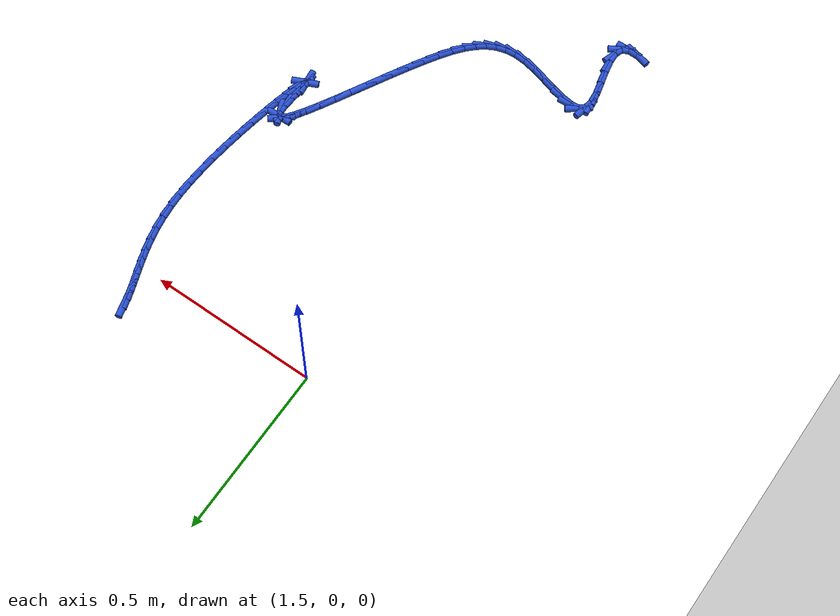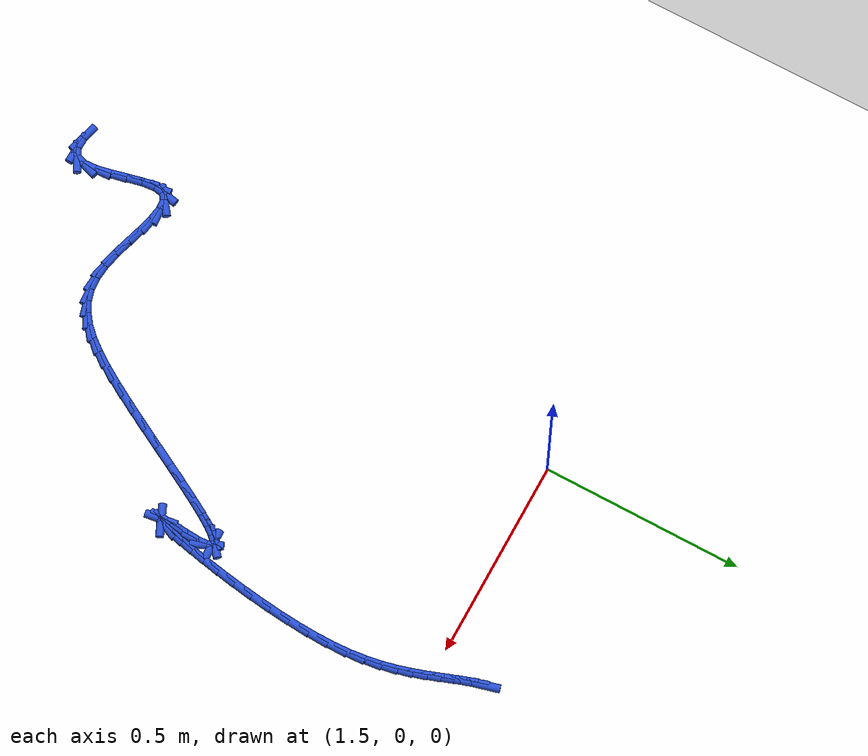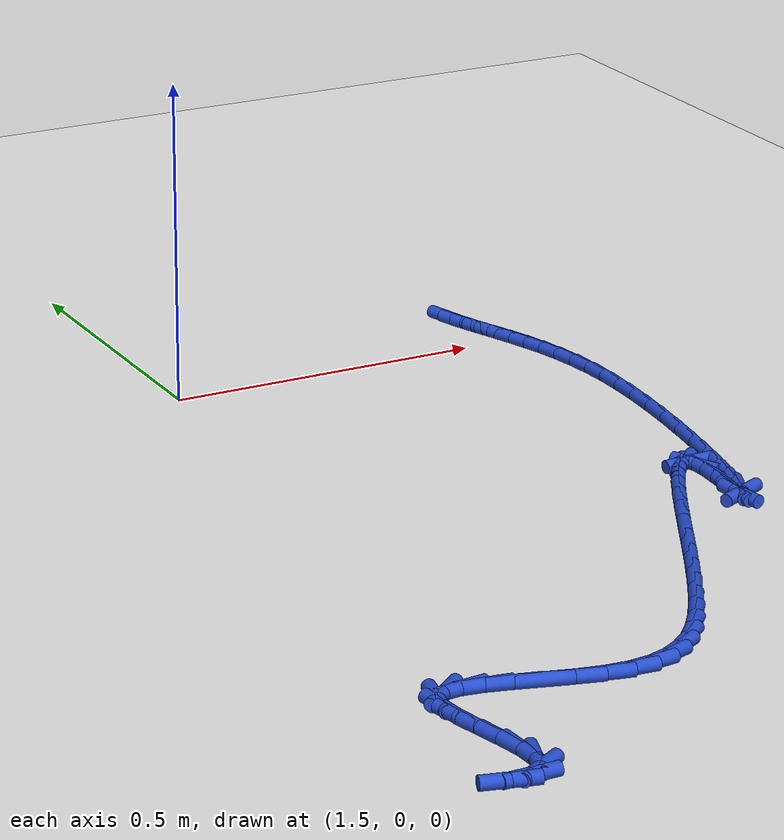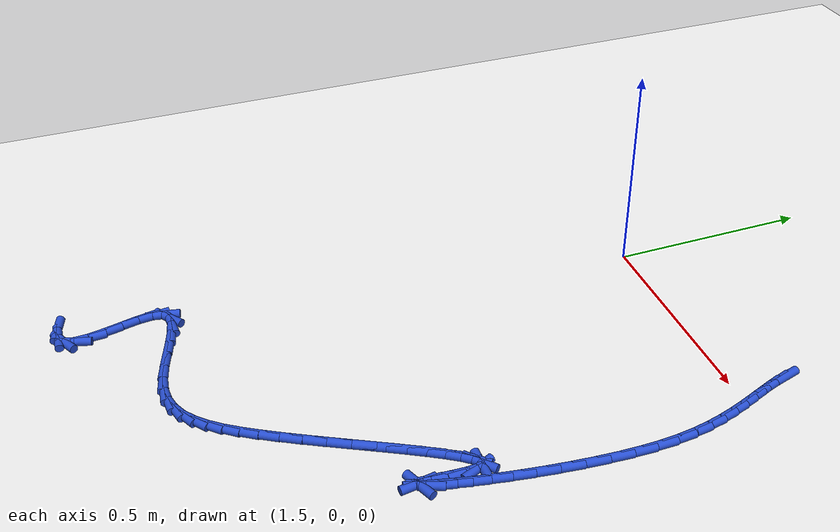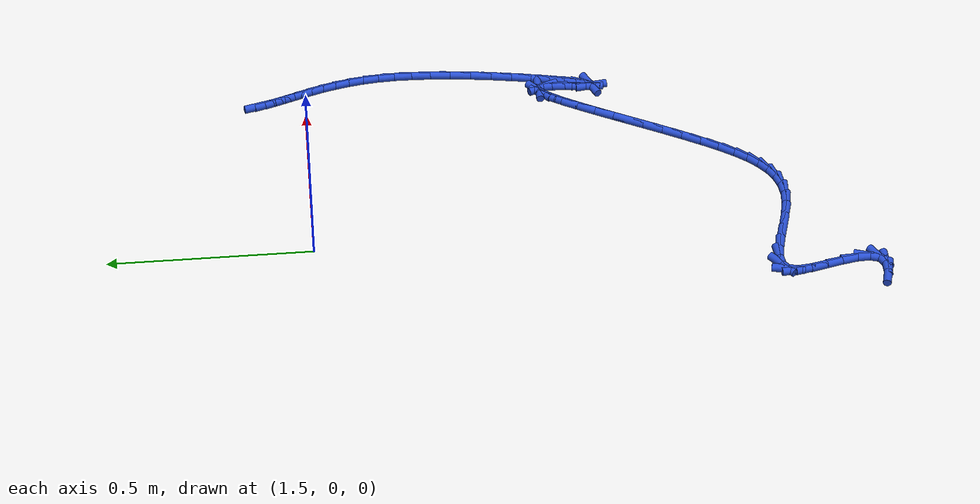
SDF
<sdf version="1.6">
 <world name="default">
  <model name="ground_plane">
   <static>1</static>
   <link name="link">
    <collision name="collision">
     <geometry><plane><normal>0 0 1</normal><size>100 100</size></plane></geometry>
     <surface><friction><ode><mu>100</mu><mu2>50</mu2></ode></friction></surface>
    </collision>
    <visual name="visual">
     <cast_shadows>0</cast_shadows>
     <geometry><plane><normal>0 0 1</normal><size>100 100</size></plane></geometry>
     <material>
      <script><uri>file://media/materials/scripts/gazebo.material</uri><name>Gazebo/WhiteGlow</name></script>
     </material>
    </visual>
   </link>
  </model>
  <model name="line">
   <link name="link_141">
    <pose>2.0324701830376704 0.11607856533102287 0.01 0 1.57 -1.3099306193355609</pose>
    <collision name="collision">
     <geometry><cylinder><radius>0.01</radius><length>0.08</length></cylinder></geometry>
    </collision>
    <visual name="visual">
     <material>
      <script><name>Gazebo/Blue</name><uri>file://media/materials/scripts/gazebo.material</uri></script>
     </material>
     <geometry><cylinder><radius>0.01</radius><length>0.08</length></cylinder></geometry>
    </visual>
   </link>
   <link name="link_142">
    <pose>2.0391776815456883 0.0909520229165868 0.01 0 1.57 -1.2582871089803935</pose>
    <collision name="collision">
     <geometry><cylinder><radius>0.01</radius><length>0.08</length></cylinder></geometry>
    </collision>
    <visual name="visual">
     <material>
      <script><name>Gazebo/Blue</name><uri>file://media/materials/scripts/gazebo.material</uri></script>
     </material>
     <geometry><cylinder><radius>0.01</radius><length>0.08</length></cylinder></geometry>
    </visual>
   </link>
   <link name="link_143">
    <pose>2.0473587637791737 0.06563115392588167 0.01 0 1.57 -1.2286268029313263</pose>
    <collision name="collision">
     <geometry><cylinder><radius>0.01</radius><length>0.08</length></cylinder></geometry>
    </collision>
    <visual name="visual">
     <material>
      <script><name>Gazebo/Blue</name><uri>file://media/materials/scripts/gazebo.material</uri></script>
     </material>
     <geometry><cylinder><radius>0.01</radius><length>0.08</length></cylinder></geometry>
    </visual>
   </link>
   <link name="link_144">
    <pose>2.0565879741381026 0.03971948911852112 0.01 0 1.57 -1.2197139581940084</pose>
    <collision name="collision">
     <geometry><cylinder><radius>0.01</radius><length>0.08</length></cylinder></geometry>
    </collision>
    <visual name="visual">
     <material>
      <script><name>Gazebo/Blue</name><uri>file://media/materials/scripts/gazebo.material</uri></script>
     </material>
     <geometry><cylinder><radius>0.01</radius><length>0.08</length></cylinder></geometry>
    </visual>
   </link>
   <link name="link_145">
    <pose>2.066439857022452 0.012820559254115346 0.01 0 1.57 -1.229399276292133</pose>
    <collision name="collision">
     <geometry><cylinder><radius>0.01</radius><length>0.08</length></cylinder></geometry>
    </collision>
    <visual name="visual">
     <material>
      <script><name>Gazebo/Blue</name><uri>file://media/materials/scripts/gazebo.material</uri></script>
     </material>
     <geometry><cylinder><radius>0.01</radius><length>0.08</length></cylinder></geometry>
    </visual>
   </link>
   <link name="link_146">
    <pose>2.076488956832197 -0.015462104907722065 0.01 0 1.57 -1.255047975191541</pose>
    <collision name="collision">
     <geometry><cylinder><radius>0.01</radius><length>0.08</length></cylinder></geometry>
    </collision>
    <visual name="visual">
     <material>
      <script><name>Gazebo/Blue</name><uri>file://media/materials/scripts/gazebo.material</uri></script>
     </material>
     <geometry><cylinder><radius>0.01</radius><length>0.08</length></cylinder></geometry>
    </visual>
   </link>
   <link name="link_147">
    <pose>2.0863098179673165 -0.04552497260738088 0.01 0 1.57 -1.2937626460417075</pose>
    <collision name="collision">
     <geometry><cylinder><radius>0.01</radius><length>0.08</length></cylinder></geometry>
    </collision>
    <visual name="visual">
     <material>
      <script><name>Gazebo/Blue</name><uri>file://media/materials/scripts/gazebo.material</uri></script>
     </material>
     <geometry><cylinder><radius>0.01</radius><length>0.08</length></cylinder></geometry>
    </visual>
   </link>
   <link name="link_148">
    <pose>2.0954769848277834 -0.07776451308524737 0.01 0 1.57 -1.342516501445037</pose>
    <collision name="collision">
     <geometry><cylinder><radius>0.01</radius><length>0.08</length></cylinder></geometry>
    </collision>
    <visual name="visual">
     <material>
      <script><name>Gazebo/Blue</name><uri>file://media/materials/scripts/gazebo.material</uri></script>
     </material>
     <geometry><cylinder><radius>0.01</radius><length>0.08</length></cylinder></geometry>
    </visual>
   </link>
   <link name="link_149">
    <pose>2.1035650018135765 -0.1125771955817115 0.01 0 1.57 -1.3982824013678965</pose>
    <collision name="collision">
     <geometry><cylinder><radius>0.01</radius><length>0.08</length></cylinder></geometry>
    </collision>
    <visual name="visual">
     <material>
      <script><name>Gazebo/Blue</name><uri>file://media/materials/scripts/gazebo.material</uri></script>
     </material>
     <geometry><cylinder><radius>0.01</radius><length>0.08</length></cylinder></geometry>
    </visual>
   </link>
   <link name="link_150">
    <pose>2.110148413324671 -0.15035948933715937 0.01 0 1.57 -1.4581876369312678</pose>
    <collision name="collision">
     <geometry><cylinder><radius>0.01</radius><length>0.08</length></cylinder></geometry>
    </collision>
    <visual name="visual">
     <material>
      <script><name>Gazebo/Blue</name><uri>file://media/materials/scripts/gazebo.material</uri></script>
     </material>
     <geometry><cylinder><radius>0.01</radius><length>0.08</length></cylinder></geometry>
    </visual>
   </link>
   <link name="link_151">
    <pose>2.1148017637610437 -0.1915078635919799 0.01 0 1.57 -1.5196441915065149</pose>
    <collision name="collision">
     <geometry><cylinder><radius>0.01</radius><length>0.08</length></cylinder></geometry>
    </collision>
    <visual name="visual">
     <material>
      <script><name>Gazebo/Blue</name><uri>file://media/materials/scripts/gazebo.material</uri></script>
     </material>
     <geometry><cylinder><radius>0.01</radius><length>0.08</length></cylinder></geometry>
    </visual>
   </link>
   <link name="link_152">
    <pose>2.1171009222314083 -0.23641611281314903 0.01 0 1.57 1.5656761741966787</pose>
    <collision name="collision">
     <geometry><cylinder><radius>0.01</radius><length>0.08</length></cylinder></geometry>
    </collision>
    <visual name="visual">
     <material>
      <script><name>Gazebo/Blue</name><uri>file://media/materials/scripts/gazebo.material</uri></script>
     </material>
     <geometry><cylinder><radius>0.01</radius><length>0.08</length></cylinder></geometry>
    </visual>
   </link>
   <link name="link_153">
    <pose>2.1168520968626385 -0.2850129445665119 0.01 0 1.57 1.5220378709196158</pose>
    <collision name="collision">
     <geometry><cylinder><radius>0.01</radius><length>0.08</length></cylinder></geometry>
    </collision>
    <visual name="visual">
     <material>
      <script><name>Gazebo/Blue</name><uri>file://media/materials/scripts/gazebo.material</uri></script>
     </material>
     <geometry><cylinder><radius>0.01</radius><length>0.08</length></cylinder></geometry>
    </visual>
   </link>
   <link name="link_154">
    <pose>2.1143525834991226 -0.33623549118873797 0.01 0 1.57 1.4876233408281125</pose>
    <collision name="collision">
     <geometry><cylinder><radius>0.01</radius><length>0.08</length></cylinder></geometry>
    </collision>
    <visual name="visual">
     <material>
      <script><name>Gazebo/Blue</name><uri>file://media/materials/scripts/gazebo.material</uri></script>
     </material>
     <geometry><cylinder><radius>0.01</radius><length>0.08</length></cylinder></geometry>
    </visual>
   </link>
   <link name="link_155">
    <pose>2.10996272542613 -0.38889358335853325 0.01 0 1.57 1.4593606258658247</pose>
    <collision name="collision">
     <geometry><cylinder><radius>0.01</radius><length>0.08</length></cylinder></geometry>
    </collision>
    <visual name="visual">
     <material>
      <script><name>Gazebo/Blue</name><uri>file://media/materials/scripts/gazebo.material</uri></script>
     </material>
     <geometry><cylinder><radius>0.01</radius><length>0.08</length></cylinder></geometry>
    </visual>
   </link>
   <link name="link_156">
    <pose>2.1040428659289323 -0.4417970517546096 0.01 0 1.57 1.4351884295852166</pose>
    <collision name="collision">
     <geometry><cylinder><radius>0.01</radius><length>0.08</length></cylinder></geometry>
    </collision>
    <visual name="visual">
     <material>
      <script><name>Gazebo/Blue</name><uri>file://media/materials/scripts/gazebo.material</uri></script>
     </material>
     <geometry><cylinder><radius>0.01</radius><length>0.08</length></cylinder></geometry>
    </visual>
   </link>
   <link name="link_157">
    <pose>2.0969533482927982 -0.49375572705567294 0.01 0 1.57 1.4135692316729707</pose>
    <collision name="collision">
     <geometry><cylinder><radius>0.01</radius><length>0.08</length></cylinder></geometry>
    </collision>
    <visual name="visual">
     <material>
      <script><name>Gazebo/Blue</name><uri>file://media/materials/scripts/gazebo.material</uri></script>
     </material>
     <geometry><cylinder><radius>0.01</radius><length>0.08</length></cylinder></geometry>
    </visual>
   </link>
   <link name="link_158">
    <pose>2.0890545158029994 -0.543579439940435 0.01 0 1.57 1.3931604719954405</pose>
    <collision name="collision">
     <geometry><cylinder><radius>0.01</radius><length>0.08</length></cylinder></geometry>
    </collision>
    <visual name="visual">
     <material>
      <script><name>Gazebo/Blue</name><uri>file://media/materials/scripts/gazebo.material</uri></script>
     </material>
     <geometry><cylinder><radius>0.01</radius><length>0.08</length></cylinder></geometry>
    </visual>
   </link>
   <link name="link_159">
    <pose>2.080706711744806 -0.590078021087602 0.01 0 1.57 1.3724899403678157</pose>
    <collision name="collision">
     <geometry><cylinder><radius>0.01</radius><length>0.08</length></cylinder></geometry>
    </collision>
    <visual name="visual">
     <material>
      <script><name>Gazebo/Blue</name><uri>file://media/materials/scripts/gazebo.material</uri></script>
     </material>
     <geometry><cylinder><radius>0.01</radius><length>0.08</length></cylinder></geometry>
    </visual>
   </link>
   <link name="link_160">
    <pose>2.072270279403489 -0.6320613011758842 0.01 0 1.57 1.3494238977668171</pose>
    <collision name="collision">
     <geometry><cylinder><radius>0.01</radius><length>0.08</length></cylinder></geometry>
    </collision>
    <visual name="visual">
     <material>
      <script><name>Gazebo/Blue</name><uri>file://media/materials/scripts/gazebo.material</uri></script>
     </material>
     <geometry><cylinder><radius>0.01</radius><length>0.08</length></cylinder></geometry>
    </visual>
   </link>
   <link name="link_161">
    <pose>2.064105562064317 -0.6683391108839917 0.01 0 1.57 1.3198329423307456</pose>
    <collision name="collision">
     <geometry><cylinder><radius>0.01</radius><length>0.08</length></cylinder></geometry>
    </collision>
    <visual name="visual">
     <material>
      <script><name>Gazebo/Blue</name><uri>file://media/materials/scripts/gazebo.material</uri></script>
     </material>
     <geometry><cylinder><radius>0.01</radius><length>0.08</length></cylinder></geometry>
    </visual>
   </link>
   <link name="link_162">
    <pose>2.0565729030125612 -0.6977212808906311 0.01 0 1.57 1.2728323435626114</pose>
    <collision name="collision">
     <geometry><cylinder><radius>0.01</radius><length>0.08</length></cylinder></geometry>
    </collision>
    <visual name="visual">
     <material>
      <script><name>Gazebo/Blue</name><uri>file://media/materials/scripts/gazebo.material</uri></script>
     </material>
     <geometry><cylinder><radius>0.01</radius><length>0.08</length></cylinder></geometry>
    </visual>
   </link>
   <link name="link_163">
    <pose>2.0500326455334923 -0.7190176418745131 0.01 0 1.57 1.1633827076059637</pose>
    <collision name="collision">
     <geometry><cylinder><radius>0.01</radius><length>0.08</length></cylinder></geometry>
    </collision>
    <visual name="visual">
     <material>
      <script><name>Gazebo/Blue</name><uri>file://media/materials/scripts/gazebo.material</uri></script>
     </material>
     <geometry><cylinder><radius>0.01</radius><length>0.08</length></cylinder></geometry>
    </visual>
   </link>
   <link name="link_164">
    <pose>2.044845132912381 -0.7310380245143455 0.01 0 1.57 0.4206362927117707</pose>
    <collision name="collision">
     <geometry><cylinder><radius>0.01</radius><length>0.08</length></cylinder></geometry>
    </collision>
    <visual name="visual">
     <material>
      <script><name>Gazebo/Blue</name><uri>file://media/materials/scripts/gazebo.material</uri></script>
     </material>
     <geometry><cylinder><radius>0.01</radius><length>0.08</length></cylinder></geometry>
    </visual>
   </link>
   <link name="link_165">
    <pose>2.041370708434497 -0.7325922594888378 0.01 0 1.57 -1.4329917175605056</pose>
    <collision name="collision">
     <geometry><cylinder><radius>0.01</radius><length>0.08</length></cylinder></geometry>
    </collision>
    <visual name="visual">
     <material>
      <script><name>Gazebo/Blue</name><uri>file://media/materials/scripts/gazebo.material</uri></script>
     </material>
     <geometry><cylinder><radius>0.01</radius><length>0.08</length></cylinder></geometry>
    </visual>
   </link>
   <link name="link_166">
    <pose>2.039969715385111 -0.7224901774766986 0.01 0 1.57 1.5260678785087718</pose>
    <collision name="collision">
     <geometry><cylinder><radius>0.01</radius><length>0.08</length></cylinder></geometry>
    </collision>
    <visual name="visual">
     <material>
      <script><name>Gazebo/Blue</name><uri>file://media/materials/scripts/gazebo.material</uri></script>
     </material>
     <geometry><cylinder><radius>0.01</radius><length>0.08</length></cylinder></geometry>
    </visual>
   </link>
   <link name="link_167">
    <pose>2.0409956789592916 -0.6995678689766535 0.01 0 1.57 1.485097381637189</pose>
    <collision name="collision">
     <geometry><cylinder><radius>0.01</radius><length>0.08</length></cylinder></geometry>
    </collision>
    <visual name="visual">
     <material>
      <script><name>Gazebo/Blue</name><uri>file://media/materials/scripts/gazebo.material</uri></script>
     </material>
     <geometry><cylinder><radius>0.01</radius><length>0.08</length></cylinder></geometry>
    </visual>
   </link>
   <link name="link_168">
    <pose>2.0438518680230793 -0.6663213291575977 0.01 0 1.57 1.5063994969084857</pose>
    <collision name="collision">
     <geometry><cylinder><radius>0.01</radius><length>0.08</length></cylinder></geometry>
    </collision>
    <visual name="visual">
     <material>
      <script><name>Gazebo/Blue</name><uri>file://media/materials/scripts/gazebo.material</uri></script>
     </material>
     <geometry><cylinder><radius>0.01</radius><length>0.08</length></cylinder></geometry>
    </visual>
   </link>
   <link name="link_169">
    <pose>2.046024477285583 -0.6326301490095447 0.01 0 1.57 -1.5256018752965135</pose>
    <collision name="collision">
     <geometry><cylinder><radius>0.01</radius><length>0.08</length></cylinder></geometry>
    </collision>
    <visual name="visual">
     <material>
      <script><name>Gazebo/Blue</name><uri>file://media/materials/scripts/gazebo.material</uri></script>
     </material>
     <geometry><cylinder><radius>0.01</radius><length>0.08</length></cylinder></geometry>
    </visual>
   </link>
   <link name="link_170">
    <pose>2.0449381281011125 -0.6086092922210595 0.01 0 1.57 -1.146377657552788</pose>
    <collision name="collision">
     <geometry><cylinder><radius>0.01</radius><length>0.08</length></cylinder></geometry>
    </collision>
    <visual name="visual">
     <material>
      <script><name>Gazebo/Blue</name><uri>file://media/materials/scripts/gazebo.material</uri></script>
     </material>
     <geometry><cylinder><radius>0.01</radius><length>0.08</length></cylinder></geometry>
    </visual>
   </link>
   <link name="link_171">
    <pose>2.039841262597391 -0.5973301197750649 0.01 0 1.57 0.02690362318363142</pose>
    <collision name="collision">
     <geometry><cylinder><radius>0.01</radius><length>0.08</length></cylinder></geometry>
    </collision>
    <visual name="visual">
     <material>
      <script><name>Gazebo/Blue</name><uri>file://media/materials/scripts/gazebo.material</uri></script>
     </material>
     <geometry><cylinder><radius>0.01</radius><length>0.08</length></cylinder></geometry>
    </visual>
   </link>
   <link name="link_172">
    <pose>2.0310953511750975 -0.5975654732664478 0.01 0 1.57 0.7162772685131291</pose>
    <collision name="collision">
     <geometry><cylinder><radius>0.01</radius><length>0.08</length></cylinder></geometry>
    </collision>
    <visual name="visual">
     <material>
      <script><name>Gazebo/Blue</name><uri>file://media/materials/scripts/gazebo.material</uri></script>
     </material>
     <geometry><cylinder><radius>0.01</radius><length>0.08</length></cylinder></geometry>
    </visual>
   </link>
   <link name="link_173">
    <pose>2.019077754624261 -0.6080268255464951 0.01 0 1.57 0.9154327871014968</pose>
    <collision name="collision">
     <geometry><cylinder><radius>0.01</radius><length>0.08</length></cylinder></geometry>
    </collision>
    <visual name="visual">
     <material>
      <script><name>Gazebo/Blue</name><uri>file://media/materials/scripts/gazebo.material</uri></script>
     </material>
     <geometry><cylinder><radius>0.01</radius><length>0.08</length></cylinder></geometry>
    </visual>
   </link>
   <link name="link_174">
    <pose>2.0041658337349073 -0.6274256494664947 0.01 0 1.57 0.9983861384597678</pose>
    <collision name="collision">
     <geometry><cylinder><radius>0.01</radius><length>0.08</length></cylinder></geometry>
    </collision>
    <visual name="visual">
     <material>
      <script><name>Gazebo/Blue</name><uri>file://media/materials/scripts/gazebo.material</uri></script>
     </material>
     <geometry><cylinder><radius>0.01</radius><length>0.08</length></cylinder></geometry>
    </visual>
   </link>
   <link name="link_175">
    <pose>1.9867369492970672 -0.6544734178777326 0.01 0 1.57 1.0409286358638283</pose>
    <collision name="collision">
     <geometry><cylinder><radius>0.01</radius><length>0.08</length></cylinder></geometry>
    </collision>
    <visual name="visual">
     <material>
      <script><name>Gazebo/Blue</name><uri>file://media/materials/scripts/gazebo.material</uri></script>
     </material>
     <geometry><cylinder><radius>0.01</radius><length>0.08</length></cylinder></geometry>
    </visual>
   </link>
   <link name="link_176">
    <pose>1.9671684621007675 -0.6878816036314976 0.01 0 1.57 1.064633454080068</pose>
    <collision name="collision">
     <geometry><cylinder><radius>0.01</radius><length>0.08</length></cylinder></geometry>
    </collision>
    <visual name="visual">
     <material>
      <script><name>Gazebo/Blue</name><uri>file://media/materials/scripts/gazebo.material</uri></script>
     </material>
     <geometry><cylinder><radius>0.01</radius><length>0.08</length></cylinder></geometry>
    </visual>
   </link>
   <link name="link_177">
    <pose>1.9458377329360368 -0.7263616795790749 0.01 0 1.57 1.0776188094106276</pose>
    <collision name="collision">
     <geometry><cylinder><radius>0.01</radius><length>0.08</length></cylinder></geometry>
    </collision>
    <visual name="visual">
     <material>
      <script><name>Gazebo/Blue</name><uri>file://media/materials/scripts/gazebo.material</uri></script>
     </material>
     <geometry><cylinder><radius>0.01</radius><length>0.08</length></cylinder></geometry>
    </visual>
   </link>
   <link name="link_178">
    <pose>1.9231221225929025 -0.7686251185717539 0.01 0 1.57 1.0834160307889933</pose>
    <collision name="collision">
     <geometry><cylinder><radius>0.01</radius><length>0.08</length></cylinder></geometry>
    </collision>
    <visual name="visual">
     <material>
      <script><name>Gazebo/Blue</name><uri>file://media/materials/scripts/gazebo.material</uri></script>
     </material>
     <geometry><cylinder><radius>0.01</radius><length>0.08</length></cylinder></geometry>
    </visual>
   </link>
   <link name="link_179">
    <pose>1.8993989918613947 -0.8133833934608194 0.01 0 1.57 1.083572599525564</pose>
    <collision name="collision">
     <geometry><cylinder><radius>0.01</radius><length>0.08</length></cylinder></geometry>
    </collision>
    <visual name="visual">
     <material>
      <script><name>Gazebo/Blue</name><uri>file://media/materials/scripts/gazebo.material</uri></script>
     </material>
     <geometry><cylinder><radius>0.01</radius><length>0.08</length></cylinder></geometry>
    </visual>
   </link>
   <link name="link_180">
    <pose>1.875045701531539 -0.8593479770975607 0.01 0 1.57 1.078542708692454</pose>
    <collision name="collision">
     <geometry><cylinder><radius>0.01</radius><length>0.08</length></cylinder></geometry>
    </collision>
    <visual name="visual">
     <material>
      <script><name>Gazebo/Blue</name><uri>file://media/materials/scripts/gazebo.material</uri></script>
     </material>
     <geometry><cylinder><radius>0.01</radius><length>0.08</length></cylinder></geometry>
    </visual>
   </link>
   <link name="link_181">
    <pose>1.8504396123933664 -0.9052303423332628 0.01 0 1.57 1.0679507644093895</pose>
    <collision name="collision">
     <geometry><cylinder><radius>0.01</radius><length>0.08</length></cylinder></geometry>
    </collision>
    <visual name="visual">
     <material>
      <script><name>Gazebo/Blue</name><uri>file://media/materials/scripts/gazebo.material</uri></script>
     </material>
     <geometry><cylinder><radius>0.01</radius><length>0.08</length></cylinder></geometry>
    </visual>
   </link>
   <link name="link_182">
    <pose>1.8259580852369037 -0.9497419620192145 0.01 0 1.57 1.0504986054615015</pose>
    <collision name="collision">
     <geometry><cylinder><radius>0.01</radius><length>0.08</length></cylinder></geometry>
    </collision>
    <visual name="visual">
     <material>
      <script><name>Gazebo/Blue</name><uri>file://media/materials/scripts/gazebo.material</uri></script>
     </material>
     <geometry><cylinder><radius>0.01</radius><length>0.08</length></cylinder></geometry>
    </visual>
   </link>
   <link name="link_183">
    <pose>1.8019784808521777 -0.9915943090067033 0.01 0 1.57 1.0229246300904666</pose>
    <collision name="collision">
     <geometry><cylinder><radius>0.01</radius><length>0.08</length></cylinder></geometry>
    </collision>
    <visual name="visual">
     <material>
      <script><name>Gazebo/Blue</name><uri>file://media/materials/scripts/gazebo.material</uri></script>
     </material>
     <geometry><cylinder><radius>0.01</radius><length>0.08</length></cylinder></geometry>
    </visual>
   </link>
   <link name="link_184">
    <pose>1.778788909789916 -1.0295987414412104 0.01 0 1.57 0.9769045856753916</pose>
    <collision name="collision">
     <geometry><cylinder><radius>0.01</radius><length>0.08</length></cylinder></geometry>
    </collision>
    <visual name="visual">
     <material>
      <script><name>Gazebo/Blue</name><uri>file://media/materials/scripts/gazebo.material</uri></script>
     </material>
     <geometry><cylinder><radius>0.01</radius><length>0.08</length></cylinder></geometry>
    </visual>
   </link>
   <link name="link_185">
    <pose>1.7560688615073738 -1.0632477618264802 0.01 0 1.57 0.9051668557318167</pose>
    <collision name="collision">
     <geometry><cylinder><radius>0.01</radius><length>0.08</length></cylinder></geometry>
    </collision>
    <visual name="visual">
     <material>
      <script><name>Gazebo/Blue</name><uri>file://media/materials/scripts/gazebo.material</uri></script>
     </material>
     <geometry><cylinder><radius>0.01</radius><length>0.08</length></cylinder></geometry>
    </visual>
   </link>
   <link name="link_186">
    <pose>1.7332437897412554 -1.0923181792729582 0.01 0 1.57 0.8013901456125105</pose>
    <collision name="collision">
     <geometry><cylinder><radius>0.01</radius><length>0.08</length></cylinder></geometry>
    </collision>
    <visual name="visual">
     <material>
      <script><name>Gazebo/Blue</name><uri>file://media/materials/scripts/gazebo.material</uri></script>
     </material>
     <geometry><cylinder><radius>0.01</radius><length>0.08</length></cylinder></geometry>
    </visual>
   </link>
   <link name="link_187">
    <pose>1.7097383010558123 -1.1165877510125766 0.01 0 1.57 0.6607334624801263</pose>
    <collision name="collision">
     <geometry><cylinder><radius>0.01</radius><length>0.08</length></cylinder></geometry>
    </collision>
    <visual name="visual">
     <material>
      <script><name>Gazebo/Blue</name><uri>file://media/materials/scripts/gazebo.material</uri></script>
     </material>
     <geometry><cylinder><radius>0.01</radius><length>0.08</length></cylinder></geometry>
    </visual>
   </link>
   <link name="link_188">
    <pose>1.6849770020153003 -1.1358342342772645 0.01 0 1.57 0.48462803711127933</pose>
    <collision name="collision">
     <geometry><cylinder><radius>0.01</radius><length>0.08</length></cylinder></geometry>
    </collision>
    <visual name="visual">
     <material>
      <script><name>Gazebo/Blue</name><uri>file://media/materials/scripts/gazebo.material</uri></script>
     </material>
     <geometry><cylinder><radius>0.01</radius><length>0.08</length></cylinder></geometry>
    </visual>
   </link>
   <link name="link_189">
    <pose>1.6583844991839714 -1.1498353862989537 0.01 0 1.57 0.2861920662411886</pose>
    <collision name="collision">
     <geometry><cylinder><radius>0.01</radius><length>0.08</length></cylinder></geometry>
    </collision>
    <visual name="visual">
     <material>
      <script><name>Gazebo/Blue</name><uri>file://media/materials/scripts/gazebo.material</uri></script>
     </material>
     <geometry><cylinder><radius>0.01</radius><length>0.08</length></cylinder></geometry>
    </visual>
   </link>
   <link name="link_190">
    <pose>1.62938539912608 -1.158368964309573 0.01 0 1.57 0.08868683104986588</pose>
    <collision name="collision">
     <geometry><cylinder><radius>0.01</radius><length>0.08</length></cylinder></geometry>
    </collision>
    <visual name="visual">
     <material>
      <script><name>Gazebo/Blue</name><uri>file://media/materials/scripts/gazebo.material</uri></script>
     </material>
     <geometry><cylinder><radius>0.01</radius><length>0.08</length></cylinder></geometry>
    </visual>
   </link>
   <link name="link_191">
    <pose>1.5974043084058795 -1.161212725541054 0.01 0 1.57 -0.08591685661222132</pose>
    <collision name="collision">
     <geometry><cylinder><radius>0.01</radius><length>0.08</length></cylinder></geometry>
    </collision>
    <visual name="visual">
     <material>
      <script><name>Gazebo/Blue</name><uri>file://media/materials/scripts/gazebo.material</uri></script>
     </material>
     <geometry><cylinder><radius>0.01</radius><length>0.08</length></cylinder></geometry>
    </visual>
   </link>
   <link name="link_192">
    <pose>1.5618737551683126 -1.1581525185353125 0.01 0 1.57 -0.21076358179081753</pose>
    <collision name="collision">
     <geometry><cylinder><radius>0.01</radius><length>0.08</length></cylinder></geometry>
    </collision>
    <visual name="visual">
     <material>
      <script><name>Gazebo/Blue</name><uri>file://media/materials/scripts/gazebo.material</uri></script>
     </material>
     <geometry><cylinder><radius>0.01</radius><length>0.08</length></cylinder></geometry>
    </visual>
   </link>
   <link name="link_193">
    <pose>1.5230883385316476 -1.1498547337045637 0.01 0 1.57 -0.2724434217538844</pose>
    <collision name="collision">
     <geometry><cylinder><radius>0.01</radius><length>0.08</length></cylinder></geometry>
    </collision>
    <visual name="visual">
     <material>
      <script><name>Gazebo/Blue</name><uri>file://media/materials/scripts/gazebo.material</uri></script>
     </material>
     <geometry><cylinder><radius>0.01</radius><length>0.08</length></cylinder></geometry>
    </visual>
   </link>
   <link name="link_194">
    <pose>1.482967411940843 -1.1386453280835704 0.01 0 1.57 -0.2868847076365447</pose>
    <collision name="collision">
     <geometry><cylinder><radius>0.01</radius><length>0.08</length></cylinder></geometry>
    </collision>
    <visual name="visual">
     <material>
      <script><name>Gazebo/Blue</name><uri>file://media/materials/scripts/gazebo.material</uri></script>
     </material>
     <geometry><cylinder><radius>0.01</radius><length>0.08</length></cylinder></geometry>
    </visual>
   </link>
   <link name="link_195">
    <pose>1.4436102729438463 -1.1270340583267278 0.01 0 1.57 -0.25475104998848175</pose>
    <collision name="collision">
     <geometry><cylinder><radius>0.01</radius><length>0.08</length></cylinder></geometry>
    </collision>
    <visual name="visual">
     <material>
      <script><name>Gazebo/Blue</name><uri>file://media/materials/scripts/gazebo.material</uri></script>
     </material>
     <geometry><cylinder><radius>0.01</radius><length>0.08</length></cylinder></geometry>
    </visual>
   </link>
   <link name="link_196">
    <pose>1.4071162190885995 -1.1175306810884282 0.01 0 1.57 -0.15372424005474816</pose>
    <collision name="collision">
     <geometry><cylinder><radius>0.01</radius><length>0.08</length></cylinder></geometry>
    </collision>
    <visual name="visual">
     <material>
      <script><name>Gazebo/Blue</name><uri>file://media/materials/scripts/gazebo.material</uri></script>
     </material>
     <geometry><cylinder><radius>0.01</radius><length>0.08</length></cylinder></geometry>
    </visual>
   </link>
   <link name="link_197">
    <pose>1.3755845479230508 -1.112644953023067 0.01 0 1.57 0.09135427328734214</pose>
    <collision name="collision">
     <geometry><cylinder><radius>0.01</radius><length>0.08</length></cylinder></geometry>
    </collision>
    <visual name="visual">
     <material>
      <script><name>Gazebo/Blue</name><uri>file://media/materials/scripts/gazebo.material</uri></script>
     </material>
     <geometry><cylinder><radius>0.01</radius><length>0.08</length></cylinder></geometry>
    </visual>
   </link>
   <link name="link_198">
    <pose>1.3511145569951444 -1.114886630785038 0.01 0 1.57 0.6598956277785367</pose>
    <collision name="collision">
     <geometry><cylinder><radius>0.01</radius><length>0.08</length></cylinder></geometry>
    </collision>
    <visual name="visual">
     <material>
      <script><name>Gazebo/Blue</name><uri>file://media/materials/scripts/gazebo.material</uri></script>
     </material>
     <geometry><cylinder><radius>0.01</radius><length>0.08</length></cylinder></geometry>
    </visual>
   </link>
   <link name="link_199">
    <pose>1.3358055438528254 -1.1267654710287345 0.01 0 1.57 1.3700257585565128</pose>
    <collision name="collision">
     <geometry><cylinder><radius>0.01</radius><length>0.08</length></cylinder></geometry>
    </collision>
    <visual name="visual">
     <material>
      <script><name>Gazebo/Blue</name><uri>file://media/materials/scripts/gazebo.material</uri></script>
     </material>
     <geometry><cylinder><radius>0.01</radius><length>0.08</length></cylinder></geometry>
    </visual>
   </link>
   <link name="link_200">
    <pose>1.3310699678887428 -1.1500346975159874 0.01 0 1.57 -1.4610797437075427</pose>
    <collision name="collision">
     <geometry><cylinder><radius>0.01</radius><length>0.08</length></cylinder></geometry>
    </collision>
    <visual name="visual">
     <material>
      <script><name>Gazebo/Blue</name><uri>file://media/materials/scripts/gazebo.material</uri></script>
     </material>
     <geometry><cylinder><radius>0.01</radius><length>0.08</length></cylinder></geometry>
    </visual>
   </link>
   <link name="link_201">
    <pose>1.3346338690133495 -1.1823870467270625 0.01 0 1.57 -1.3530308398462798</pose>
    <collision name="collision">
     <geometry><cylinder><radius>0.01</radius><length>0.08</length></cylinder></geometry>
    </collision>
    <visual name="visual">
     <material>
      <script><name>Gazebo/Blue</name><uri>file://media/materials/scripts/gazebo.material</uri></script>
     </material>
     <geometry><cylinder><radius>0.01</radius><length>0.08</length></cylinder></geometry>
    </visual>
   </link>
   <link name="link_202">
    <pose>1.3429917870499077 -1.220158792464711 0.01 0 1.57 -1.3314451246777195</pose>
    <collision name="collision">
     <geometry><cylinder><radius>0.01</radius><length>0.08</length></cylinder></geometry>
    </collision>
    <visual name="visual">
     <material>
      <script><name>Gazebo/Blue</name><uri>file://media/materials/scripts/gazebo.material</uri></script>
     </material>
     <geometry><cylinder><radius>0.01</radius><length>0.08</length></cylinder></geometry>
    </visual>
   </link>
   <link name="link_203">
    <pose>1.3526373966251697 -1.2596852555420797 0.01 0 1.57 -1.37586418482002</pose>
    <collision name="collision">
     <geometry><cylinder><radius>0.01</radius><length>0.08</length></cylinder></geometry>
    </collision>
    <visual name="visual">
     <material>
      <script><name>Gazebo/Blue</name><uri>file://media/materials/scripts/gazebo.material</uri></script>
     </material>
     <geometry><cylinder><radius>0.01</radius><length>0.08</length></cylinder></geometry>
    </visual>
   </link>
   <link name="link_204">
    <pose>1.360064372365886 -1.2973017567723177 0.01 0 1.57 -1.5177276711007148</pose>
    <collision name="collision">
     <geometry><cylinder><radius>0.01</radius><length>0.08</length></cylinder></geometry>
    </collision>
    <visual name="visual">
     <material>
      <script><name>Gazebo/Blue</name><uri>file://media/materials/scripts/gazebo.material</uri></script>
     </material>
     <geometry><cylinder><radius>0.01</radius><length>0.08</length></cylinder></geometry>
    </visual>
   </link>
   <link name="link_205">
    <pose>1.361766388898809 -1.3293436169685746 0.01 0 1.57 1.2518735846040487</pose>
    <collision name="collision">
     <geometry><cylinder><radius>0.01</radius><length>0.08</length></cylinder></geometry>
    </collision>
    <visual name="visual">
     <material>
      <script><name>Gazebo/Blue</name><uri>file://media/materials/scripts/gazebo.material</uri></script>
     </material>
     <geometry><cylinder><radius>0.01</radius><length>0.08</length></cylinder></geometry>
    </visual>
   </link>
   <link name="link_206">
    <pose>1.3542371208506896 -1.352146156943997 0.01 0 1.57 0.5106350958032135</pose>
    <collision name="collision">
     <geometry><cylinder><radius>0.01</radius><length>0.08</length></cylinder></geometry>
    </collision>
    <visual name="visual">
     <material>
      <script><name>Gazebo/Blue</name><uri>file://media/materials/scripts/gazebo.material</uri></script>
     </material>
     <geometry><cylinder><radius>0.01</radius><length>0.08</length></cylinder></geometry>
    </visual>
   </link>
   <link name="link_207">
    <pose>1.3350089690192402 -1.3629176295039072 0.01 0 1.57 -0.006250302668896602</pose>
    <collision name="collision">
     <geometry><cylinder><radius>0.01</radius><length>0.08</length></cylinder></geometry>
    </collision>
    <visual name="visual">
     <material>
      <script><name>Gazebo/Blue</name><uri>file://media/materials/scripts/gazebo.material</uri></script>
     </material>
     <geometry><cylinder><radius>0.01</radius><length>0.08</length></cylinder></geometry>
    </visual>
   </link>
   <link name="link_208">
    <pose>1.3062210288228464 -1.36273769382132 0.01 0 1.57 -0.2515906577478831</pose>
    <collision name="collision">
     <geometry><cylinder><radius>0.01</radius><length>0.08</length></cylinder></geometry>
    </collision>
    <visual name="visual">
     <material>
      <script><name>Gazebo/Blue</name><uri>file://media/materials/scripts/gazebo.material</uri></script>
     </material>
     <geometry><cylinder><radius>0.01</radius><length>0.08</length></cylinder></geometry>
    </visual>
   </link>
  </model>
 </world>
</sdf>
